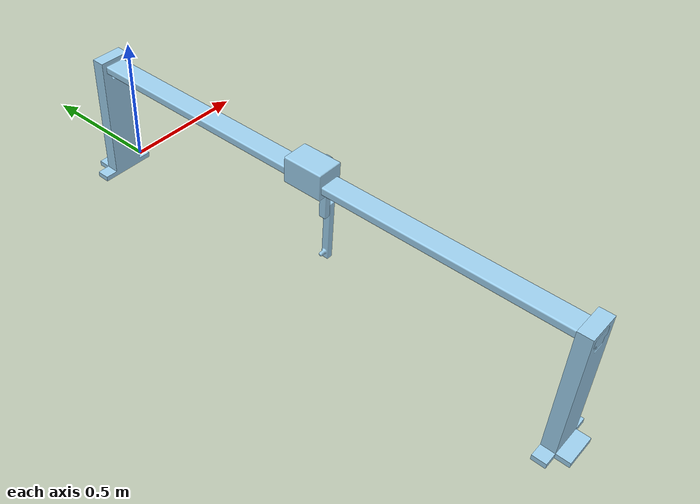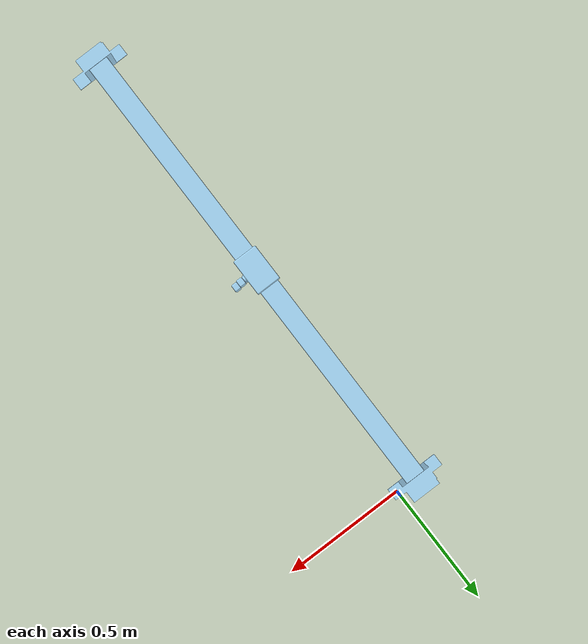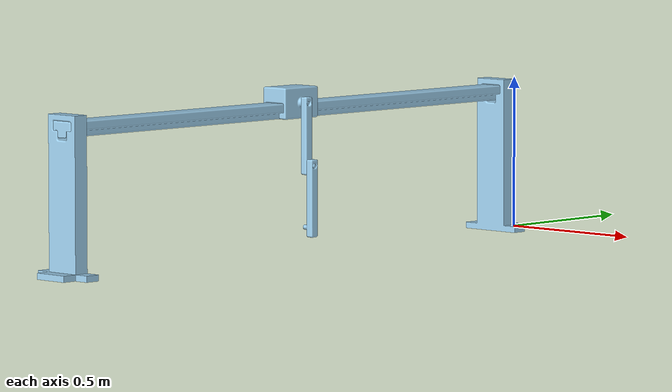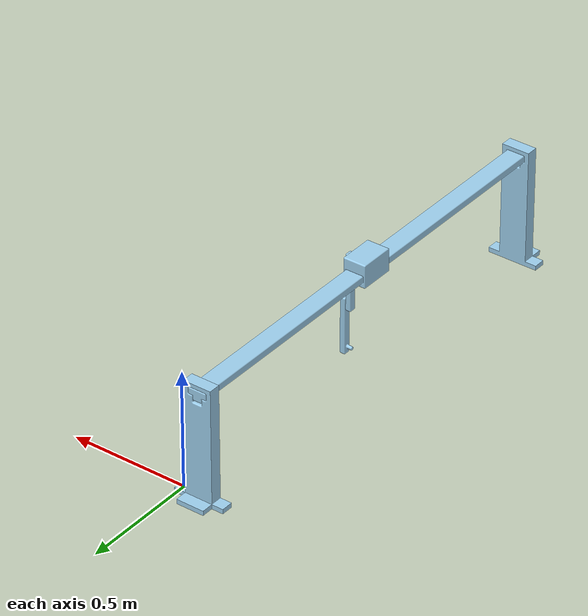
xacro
<?xml version="1.0"?>
<robot name="pendubot"  xmlns:xacro="http://wiki.ros.org/xacro">

<xacro:include filename="$(find pendubot_description)/pendubot/ros2_control.urdf.xacro"/>
<link name="support_plaform_1">
<visual>
<origin xyz="-0.085000000000000019984 0.024999999999999997918 -0.020000000000000003886" rpy="-1.3877787807814456755e-16 1.9047944049941415051e-16 0" />
<geometry>
<mesh filename="package://pendubot_description/pendubot/support_plaform_1.stl"/>
</geometry>
<material name="support_plaform_1_material">
<color rgba="0.61568627450980395466 0.81176470588235294379 0.92941176470588238168 1.0"/>
</material>
</visual>
<collision>
<origin xyz="-0.085000000000000019984 0.024999999999999997918 -0.020000000000000003886" rpy="-1.3877787807814456755e-16 1.9047944049941415051e-16 0" />
<geometry>
<mesh filename="package://pendubot_description/pendubot/support_plaform_1.stl"/>
</geometry>
</collision>
<inertial>
<origin xyz="-0.084999999999999978351 0.0019366224157372038169 0.20527754982977566844" rpy="0 0 0"/>
<mass value="800.3650792577619803581" />
<inertia ixx="0.18809404056513884251" ixy="6.6429634534729561893e-19"  ixz="-3.3040840509945104842e-17" iyy="0.19768960892502629445" iyz="0.0034874963072423492694" izz="0.014632587595117504606" />
</inertial>
</link>

<link name="cart_pole_line">
<visual>
<origin xyz="0.0050000000000000009714 -0.049999999999999988898 -1.3877787807814456755e-17" rpy="-1.570796326794896558 -1.570796326794896558 0" />
<geometry>
<mesh filename="package://pendubot_description/pendubot/cart_pole_line.stl"/>
</geometry>
<material name="cart_pole_line_material">
<color rgba="0.61568627450980395466 0.81176470588235294379 0.92941176470588238168 1.0"/>
</material>
</visual>
<collision>
<origin xyz="0.0050000000000000009714 -0.049999999999999988898 -1.3877787807814456755e-17" rpy="-1.570796326794896558 -1.570796326794896558 0" />
<geometry>
<mesh filename="package://pendubot_description/pendubot/cart_pole_line.stl"/>
</geometry>
</collision>
<inertial>
<origin xyz="-0.99507213325206489429 -0.021216690244781032104 -3.5306212902944823361e-05" rpy="0 0 0"/>
<mass value="17.129471613392958318" />
<inertia ixx="0.010371517126750266768" ixy="-2.2571194222369972551e-05"  ixz="8.5176426230256071983e-06" iyy="5.7133527876254550648" iyz="-5.938288855520099704e-06" izz="5.7091229148612372413" />
</inertial>
</link>

<link name="support_plaform_1_2">
<visual>
<origin xyz="0.0050000000000001154632 -0.48999999999999999112 8.3266726846886740532e-17" rpy="-1.570796326794896558 -1.570796326794896558 0" />
<geometry>
<mesh filename="package://pendubot_description/pendubot/support_plaform_1.stl"/>
</geometry>
<material name="support_plaform_1_material">
<color rgba="0.61568627450980395466 0.81176470588235294379 0.92941176470588238168 1.0"/>
</material>
</visual>
<collision>
<origin xyz="0.0050000000000001154632 -0.48999999999999999112 8.3266726846886740532e-17" rpy="-1.570796326794896558 -1.570796326794896558 0" />
<geometry>
<mesh filename="package://pendubot_description/pendubot/support_plaform_1.stl"/>
</geometry>
</collision>
<inertial>
<origin xyz="-0.018063377584262709646 -0.26472245017022433267 7.9318860187151341436e-17" rpy="0 0 0"/>
<mass value="800.3650792577619803581" />
<inertia ixx="0.19768960892502629445" ixy="0.0034874963072423744229"  ixz="2.639638845664999534e-49" iyy="0.014632587595117504606" iyz="2.3862418064830125439e-51" izz="0.18809404056513884251" />
</inertial>
</link>

<joint name="fastened 3" type="fixed">
<origin xyz="-1.9899999999999999911 0 -1.3877787807814456755e-17" rpy="3.141592653589793116 6.8422776578360208541e-49 3.141592653589793116" />
<parent link="cart_pole_line" />
<child link="support_plaform_1_2" />
<axis xyz="0 0 1"/>
<limit effort="1" velocity="20" />
<joint_properties friction="0.0"/>
</joint>

<link name="cart_move">
<visual>
<origin xyz="0.090000000000000024425 -0.025000000000000022204 -0.074999999999999955591" rpy="-1.570796326794896558 -1.570796326794896336 0" />
<geometry>
<mesh filename="package://pendubot_description/pendubot/cart_move.stl"/>
</geometry>
<material name="cart_move_material">
<color rgba="0.61568627450980395466 0.81176470588235294379 0.92941176470588238168 1.0"/>
</material>
</visual>
<collision>
<origin xyz="0.090000000000000024425 -0.025000000000000022204 -0.074999999999999955591" rpy="-1.570796326794896558 -1.570796326794896336 0" />
<geometry>
<mesh filename="package://pendubot_description/pendubot/cart_move.stl"/>
</geometry>
</collision>
<inertial>
<origin xyz="0.040619485761392813694 0.03507424335133896981 5.5511151231257827021e-17" rpy="0 0 0"/>
<mass value="2.7582989593438584919" />
<inertia ixx="0.0072884337806232426735" ixy="1.7214130923659983201e-05"  ixz="5.5457548773363819873e-21" iyy="0.007943139603199119228" iyz="9.1364122808394913014e-19" izz="0.0051071794741707502926" />
</inertial>
</link>

<link name="cart_swinger">
<visual>
<origin xyz="1.1102230246251565404e-16 -0.23000000000000000999 -0.020000000000000000416" rpy="-1.570796326794896558 -3.8811238815456647556e-49 0" />
<geometry>
<mesh filename="package://pendubot_description/pendubot/cart_swinger.stl"/>
</geometry>
<material name="cart_swinger_material">
<color rgba="0.61568627450980395466 0.81176470588235294379 0.92941176470588238168 1.0"/>
</material>
</visual>
<collision>
<origin xyz="1.1102230246251565404e-16 -0.23000000000000000999 -0.020000000000000000416" rpy="-1.570796326794896558 -3.8811238815456647556e-49 0" />
<geometry>
<mesh filename="package://pendubot_description/pendubot/cart_swinger.stl"/>
</geometry>
</collision>
<inertial>
<origin xyz="-2.2983265886371830608e-08 -0.11025900292345226783 -0.0080888724187521965359" rpy="0 0 0"/>
<mass value="0.48763073080899393963" />
<inertia ixx="0.0024968640996937086982" ixy="3.8883696011364461363e-10"  ixz="-1.4181265057008209006e-10" iyy="6.5485683220027306856e-05" iyz="-2.5769181796588400059e-05" izz="0.0025009745471827196997" />
</inertial>
</link>

<link name="cart_swinger_2">
<visual>
<origin xyz="1.1102230246251565404e-16 -0.22999999999999998224 -0.0050000000000000027062" rpy="-1.570796326794896558 -3.8811238815456647556e-49 0" />
<geometry>
<mesh filename="package://pendubot_description/pendubot/cart_swinger.stl"/>
</geometry>
<material name="cart_swinger_material">
<color rgba="0.61568627450980395466 0.81176470588235294379 0.92941176470588238168 1.0"/>
</material>
</visual>
<collision>
<origin xyz="1.1102230246251565404e-16 -0.22999999999999998224 -0.0050000000000000027062" rpy="-1.570796326794896558 -3.8811238815456647556e-49 0" />
<geometry>
<mesh filename="package://pendubot_description/pendubot/cart_swinger.stl"/>
</geometry>
</collision>
<inertial>
<origin xyz="-2.2983265886371830608e-08 -0.11025900292345224007 0.0069111275812478011743" rpy="0 0 0"/>
<mass value="0.48763073080899393963" />
<inertia ixx="0.0024968640996937086982" ixy="3.8883696011364461363e-10"  ixz="-1.4181265057008209006e-10" iyy="6.5485683220027306856e-05" iyz="-2.5769181796588400059e-05" izz="0.0025009745471827196997" />
</inertial>
</link>

<joint name="continuous_revolute_2" type="continuous">
<origin xyz="1.1102230246251565404e-16 -0.20000000000000006661 -0.025000000000000011796" rpy="3.141592653589793116 1.232595164407828209e-32 3.141592653589793116" />
<parent link="cart_swinger" />
<child link="cart_swinger_2" />
<axis xyz="0 0 1"/>
<limit effort="10000" velocity="20" />
<joint_properties friction="0.0"/>
</joint>

<joint name="continuous_revolute_1" type="continuous">
<origin xyz="0.10468245836551855199 0.024999999999999911182 0" rpy="-2.4651903288156618919e-32 -1.570796326794896336 0" />
<parent link="cart_move" />
<child link="cart_swinger" />
<axis xyz="0 0 1"/>
<limit effort="10000" velocity="20" />
<joint_properties friction="0.0"/>
</joint>

<joint name="slider_1" type="fixed">
<origin xyz="-0.99499999999999999556 -0.025000000000000022204 -0.040000000000000021649" rpy="-0 -1.570796326794896558 0" />
<parent link="cart_pole_line" />
<child link="cart_move" />
<axis xyz="0 0 1"/>
<limit effort="1" velocity="20"/>
<joint_properties friction="0.0"/>
</joint>

<joint name="fastened 2" type="fixed">
<origin xyz="-0.085000000000000006106 0.020000000000000055927 0.46999999999999997335" rpy="1.57079632679489678 1.3877787807814456755e-16 1.570796326794896558" />
<parent link="support_plaform_1" />
<child link="cart_pole_line" />
<axis xyz="0 0 1"/>
<limit effort="1" velocity="20" />
<joint_properties friction="0.0"/>
</joint>

</robot>
